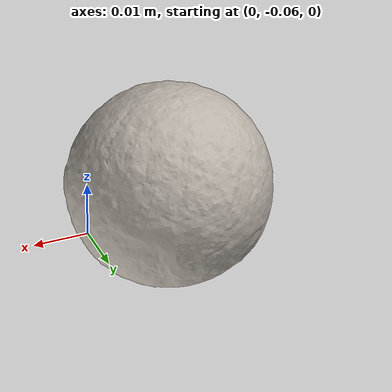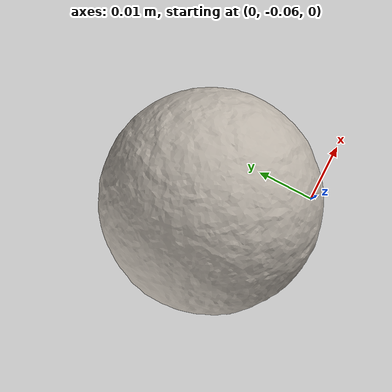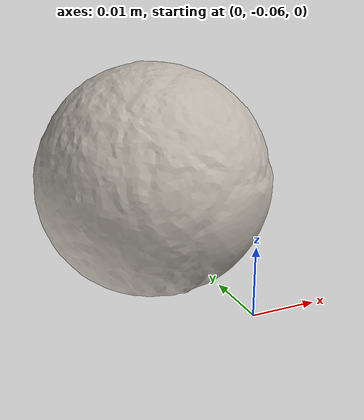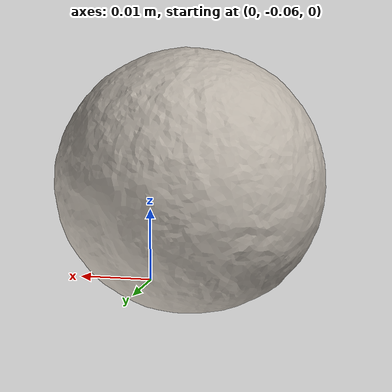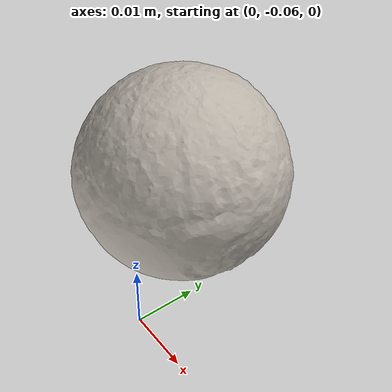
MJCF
<mujoco model="marbles_b">
  <compiler angle="radian" meshdir="assets" texturedir="assets"/>
    <default>
        <default class="ycb_col">
            <geom contype="1" conaffinity="1" group="3" rgba=".4 .5 .6 1"/>
        </default>
        <default class="ycb_viz">
            <geom contype="0" conaffinity="0" type="mesh" mass="0"/>
        </default>
    </default>
  <asset>
    <texture type="2d" name="b_marbles_tex" file="texture_map.png"/>
    <material name="b_marbles_mat" texture="b_marbles_tex" specular="0.5" shininess="0.5"/>
    <mesh file="textured.obj" name="b_marbles"/>
    <mesh file="textured_collision_0.obj" name="b_marbles_collision_0"/>
  </asset>
  <worldbody>
      <geom material="b_marbles_mat" mesh="b_marbles" class="ycb_viz"/>
      <geom mesh="b_marbles_collision_0" class="ycb_col" conaffinity="1" condim="4" friction="0.1 0.1 0.1" mass="0.0053" rgba="1 1 1 1" solimp="0.99 0.99 0.01" solref=".001 0.1" type="mesh" group="3"/>
  </worldbody>
</mujoco>
